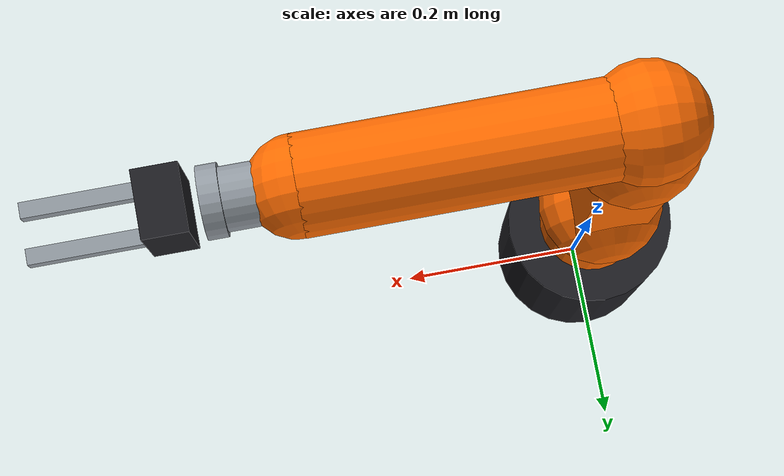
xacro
<?xml version="1.0"?>
<robot name="irb120_hito1" xmlns:xacro="http://www.ros.org/wiki/xacro">
  <xacro:include filename="$(find irb120_hito1)/urdf/materials.xacro"/>
  <xacro:include filename="$(find irb120_hito1)/urdf/irb120.macro.xacro"/>
  <xacro:include filename="$(find irb120_hito1)/urdf/gripper.macro.xacro"/>

  <xacro:irb120_materials/>
  <xacro:irb120_robot/>
  <xacro:parallel_gripper parent="tool0"/>
</robot>

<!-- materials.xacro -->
<robot xmlns:xacro="http://www.ros.org/wiki/xacro">
  <xacro:macro name="irb120_materials">
    <material name="abb_orange">
      <color rgba="1.0 0.42 0.0 1.0"/>
    </material>
    <material name="abb_dark">
      <color rgba="0.12 0.12 0.14 1.0"/>
    </material>
    <material name="metal">
      <color rgba="0.58 0.61 0.64 1.0"/>
    </material>
  </xacro:macro>
</robot>

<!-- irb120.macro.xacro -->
<robot xmlns:xacro="http://www.ros.org/wiki/xacro">
  <xacro:macro name="irb120_robot" params="prefix:=''">
    <link name="${prefix}base_link">
      <visual>
        <origin xyz="0 0 0.0935" rpy="0 0 0"/>
        <geometry><cylinder radius="0.09" length="0.187"/></geometry>
        <material name="abb_dark"/>
      </visual>
      <collision>
        <origin xyz="0 0 0.0935" rpy="0 0 0"/>
        <geometry><cylinder radius="0.09" length="0.187"/></geometry>
      </collision>
    </link>

    <!-- Fila DH 1: d=0.290, a=0, alpha=-pi/2. -->
    <link name="${prefix}joint_1_frame">
      <visual>
        <origin xyz="0 0 0.145" rpy="0 0 0"/>
        <geometry><cylinder radius="0.055" length="0.290"/></geometry>
        <material name="abb_orange"/>
      </visual>
    </link>
    <joint name="${prefix}joint_1" type="revolute">
      <parent link="${prefix}base_link"/>
      <child link="${prefix}joint_1_frame"/>
      <axis xyz="0 0 1"/>
      <limit lower="-2.8797932658" upper="2.8797932658" effort="100" velocity="4.3633231300"/>
    </joint>
    <link name="${prefix}theta_1_frame"/>
    <joint name="${prefix}theta_offset_1" type="fixed">
      <parent link="${prefix}joint_1_frame"/>
      <child link="${prefix}theta_1_frame"/>
    </joint>
    <link name="${prefix}link_1">
      <inertial>
        <origin xyz="0 0.054 0" rpy="0 0 0"/>
        <mass value="4.248"/>
        <inertia ixx="0.019699" ixy="0" ixz="0" iyy="0.014484" iyz="0" izz="0.019952"/>
      </inertial>
      <visual>
        <geometry><sphere radius="0.065"/></geometry>
        <material name="abb_orange"/>
      </visual>
    </link>
    <joint name="${prefix}dh_1" type="fixed">
      <parent link="${prefix}theta_1_frame"/>
      <child link="${prefix}link_1"/>
      <origin xyz="0 0 0.290" rpy="${-pi/2} 0 0"/>
    </joint>

    <!-- Fila DH 2: theta=q2-pi/2, d=0, a=0.270, alpha=0. -->
    <link name="${prefix}joint_2_frame"/>
    <joint name="${prefix}joint_2" type="revolute">
      <parent link="${prefix}link_1"/>
      <child link="${prefix}joint_2_frame"/>
      <axis xyz="0 0 1"/>
      <limit lower="-1.9198621772" upper="1.9198621772" effort="100" velocity="4.3633231300"/>
    </joint>
    <link name="${prefix}theta_2_frame">
      <visual>
        <origin xyz="0.135 0 0" rpy="0 0 0"/>
        <geometry><box size="0.270 0.075 0.075"/></geometry>
        <material name="abb_orange"/>
      </visual>
    </link>
    <joint name="${prefix}theta_offset_2" type="fixed">
      <parent link="${prefix}joint_2_frame"/>
      <child link="${prefix}theta_2_frame"/>
      <origin xyz="0 0 0" rpy="0 0 ${-pi/2}"/>
    </joint>
    <link name="${prefix}link_2">
      <inertial>
        <origin xyz="-0.169 0 0" rpy="0 0 0"/>
        <mass value="5.412"/>
        <inertia ixx="0.035942" ixy="0" ixz="0" iyy="0.083522" iyz="0" izz="0.057569"/>
      </inertial>
      <visual><geometry><sphere radius="0.060"/></geometry><material name="abb_orange"/></visual>
    </link>
    <joint name="${prefix}dh_2" type="fixed">
      <parent link="${prefix}theta_2_frame"/>
      <child link="${prefix}link_2"/>
      <origin xyz="0.270 0 0" rpy="0 0 0"/>
    </joint>

    <!-- Fila DH 3: d=0, a=0.070, alpha=-pi/2. -->
    <link name="${prefix}joint_3_frame"/>
    <joint name="${prefix}joint_3" type="revolute">
      <parent link="${prefix}link_2"/>
      <child link="${prefix}joint_3_frame"/>
      <axis xyz="0 0 1"/>
      <limit lower="-1.9198621772" upper="1.2217304764" effort="100" velocity="4.3633231300"/>
    </joint>
    <link name="${prefix}theta_3_frame">
      <visual>
        <origin xyz="0.035 0 0" rpy="0 0 0"/>
        <geometry><box size="0.070 0.070 0.070"/></geometry>
        <material name="abb_orange"/>
      </visual>
    </link>
    <joint name="${prefix}theta_offset_3" type="fixed">
      <parent link="${prefix}joint_3_frame"/>
      <child link="${prefix}theta_3_frame"/>
    </joint>
    <link name="${prefix}link_3">
      <inertial>
        <origin xyz="-0.012 0 0.023" rpy="0 0 0"/>
        <mass value="4.077"/>
        <inertia ixx="0.017562" ixy="0" ixz="-0.001993" iyy="0.023140" iyz="0" izz="0.011589"/>
      </inertial>
      <visual><geometry><sphere radius="0.055"/></geometry><material name="abb_orange"/></visual>
    </link>
    <joint name="${prefix}dh_3" type="fixed">
      <parent link="${prefix}theta_3_frame"/>
      <child link="${prefix}link_3"/>
      <origin xyz="0.070 0 0" rpy="${-pi/2} 0 0"/>
    </joint>

    <!-- Fila DH 4: d=0.302, a=0, alpha=pi/2. -->
    <link name="${prefix}joint_4_frame"/>
    <joint name="${prefix}joint_4" type="revolute">
      <parent link="${prefix}link_3"/>
      <child link="${prefix}joint_4_frame"/>
      <axis xyz="0 0 1"/>
      <limit lower="-2.7925268032" upper="2.7925268032" effort="100" velocity="5.5850536064"/>
    </joint>
    <link name="${prefix}theta_4_frame">
      <visual>
        <origin xyz="0 0 0.151" rpy="0 0 0"/>
        <geometry><cylinder radius="0.045" length="0.302"/></geometry>
        <material name="abb_orange"/>
      </visual>
    </link>
    <joint name="${prefix}theta_offset_4" type="fixed">
      <parent link="${prefix}joint_4_frame"/>
      <child link="${prefix}theta_4_frame"/>
    </joint>
    <link name="${prefix}link_4">
      <inertial>
        <origin xyz="0 -0.007 0" rpy="0 0 0"/>
        <mass value="1.832"/>
        <inertia ixx="0.007247" ixy="0" ixz="0" iyy="0.003919" iyz="0" izz="0.005551"/>
      </inertial>
      <visual><geometry><sphere radius="0.045"/></geometry><material name="abb_orange"/></visual>
    </link>
    <joint name="${prefix}dh_4" type="fixed">
      <parent link="${prefix}theta_4_frame"/>
      <child link="${prefix}link_4"/>
      <origin xyz="0 0 0.302" rpy="${pi/2} 0 0"/>
    </joint>

    <!-- Fila DH 5: d=0, a=0, alpha=-pi/2. -->
    <link name="${prefix}joint_5_frame"/>
    <joint name="${prefix}joint_5" type="revolute">
      <parent link="${prefix}link_4"/>
      <child link="${prefix}joint_5_frame"/>
      <axis xyz="0 0 1"/>
      <limit lower="-2.0943951024" upper="2.0943951024" effort="100" velocity="5.5850536064"/>
    </joint>
    <link name="${prefix}theta_5_frame"/>
    <joint name="${prefix}theta_offset_5" type="fixed">
      <parent link="${prefix}joint_5_frame"/>
      <child link="${prefix}theta_5_frame"/>
    </joint>
    <link name="${prefix}link_5">
      <inertial>
        <origin xyz="0 0 0" rpy="0 0 0"/>
        <mass value="0.755"/>
        <inertia ixx="0.001120" ixy="0" ixz="0" iyy="0.001227" iyz="0" izz="0.000559"/>
      </inertial>
      <visual><geometry><sphere radius="0.035"/></geometry><material name="abb_orange"/></visual>
    </link>
    <joint name="${prefix}dh_5" type="fixed">
      <parent link="${prefix}theta_5_frame"/>
      <child link="${prefix}link_5"/>
      <origin xyz="0 0 0" rpy="${-pi/2} 0 0"/>
    </joint>

    <!-- Fila DH 6: theta=q6+pi, d=0.072, a=0, alpha=0. -->
    <link name="${prefix}joint_6_frame"/>
    <joint name="${prefix}joint_6" type="revolute">
      <parent link="${prefix}link_5"/>
      <child link="${prefix}joint_6_frame"/>
      <axis xyz="0 0 1"/>
      <limit lower="-6.9813170080" upper="6.9813170080" effort="100" velocity="7.3303828584"/>
    </joint>
    <link name="${prefix}theta_6_frame">
      <visual>
        <origin xyz="0 0 0.036" rpy="0 0 0"/>
        <geometry><cylinder radius="0.028" length="0.072"/></geometry>
        <material name="metal"/>
      </visual>
    </link>
    <joint name="${prefix}theta_offset_6" type="fixed">
      <parent link="${prefix}joint_6_frame"/>
      <child link="${prefix}theta_6_frame"/>
      <origin xyz="0 0 0" rpy="0 0 ${pi}"/>
    </joint>
    <link name="${prefix}link_6">
      <inertial>
        <origin xyz="0 0 -0.007" rpy="0 0 0"/>
        <mass value="0.019"/>
        <inertia ixx="0.000002347" ixy="0" ixz="0" iyy="0.000002347" iyz="0" izz="0.000004123"/>
      </inertial>
      <visual><geometry><cylinder radius="0.032" length="0.018"/></geometry><material name="metal"/></visual>
    </link>
    <joint name="${prefix}dh_6" type="fixed">
      <parent link="${prefix}theta_6_frame"/>
      <child link="${prefix}link_6"/>
      <origin xyz="0 0 0.072" rpy="0 0 0"/>
    </joint>
    <link name="${prefix}tool0"/>
    <joint name="${prefix}tool0_fixed" type="fixed">
      <parent link="${prefix}link_6"/>
      <child link="${prefix}tool0"/>
    </joint>
  </xacro:macro>
</robot>

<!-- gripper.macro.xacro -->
<robot xmlns:xacro="http://www.ros.org/wiki/xacro">
  <!-- Pinza paralela parametrica provisional; sustituible por los meshes/CAD definitivos. -->
  <xacro:macro name="parallel_gripper" params="parent prefix:=''">
    <link name="${prefix}gripper_base_link">
      <visual>
        <origin xyz="0 0 0.020" rpy="0 0 0"/>
        <geometry><box size="0.080 0.060 0.040"/></geometry>
        <material name="abb_dark"/>
      </visual>
      <collision>
        <origin xyz="0 0 0.020" rpy="0 0 0"/>
        <geometry><box size="0.080 0.060 0.040"/></geometry>
      </collision>
    </link>
    <joint name="${prefix}gripper_mount" type="fixed">
      <parent link="${parent}"/>
      <child link="${prefix}gripper_base_link"/>
      <origin xyz="0 0 0.020" rpy="0 0 0"/>
    </joint>

    <link name="${prefix}left_finger_link">
      <visual>
        <origin xyz="0 0 0.050" rpy="0 0 0"/>
        <geometry><box size="0.014 0.014 0.100"/></geometry>
        <material name="metal"/>
      </visual>
    </link>
    <joint name="${prefix}gripper_left_joint" type="prismatic">
      <parent link="${prefix}gripper_base_link"/>
      <child link="${prefix}left_finger_link"/>
      <origin xyz="0 0.020 0.040" rpy="0 0 0"/>
      <axis xyz="0 1 0"/>
      <limit lower="0.0" upper="0.015" effort="20" velocity="0.10"/>
    </joint>

    <link name="${prefix}right_finger_link">
      <visual>
        <origin xyz="0 0 0.050" rpy="0 0 0"/>
        <geometry><box size="0.014 0.014 0.100"/></geometry>
        <material name="metal"/>
      </visual>
    </link>
    <joint name="${prefix}gripper_right_joint" type="prismatic">
      <parent link="${prefix}gripper_base_link"/>
      <child link="${prefix}right_finger_link"/>
      <origin xyz="0 -0.020 0.040" rpy="0 0 0"/>
      <axis xyz="0 -1 0"/>
      <limit lower="0.0" upper="0.015" effort="20" velocity="0.10"/>
    </joint>

    <link name="${prefix}tcp_link"/>
    <joint name="${prefix}tcp_fixed" type="fixed">
      <parent link="${prefix}gripper_base_link"/>
      <child link="${prefix}tcp_link"/>
      <origin xyz="0 0 0.140" rpy="0 0 0"/>
    </joint>
  </xacro:macro>
</robot>
